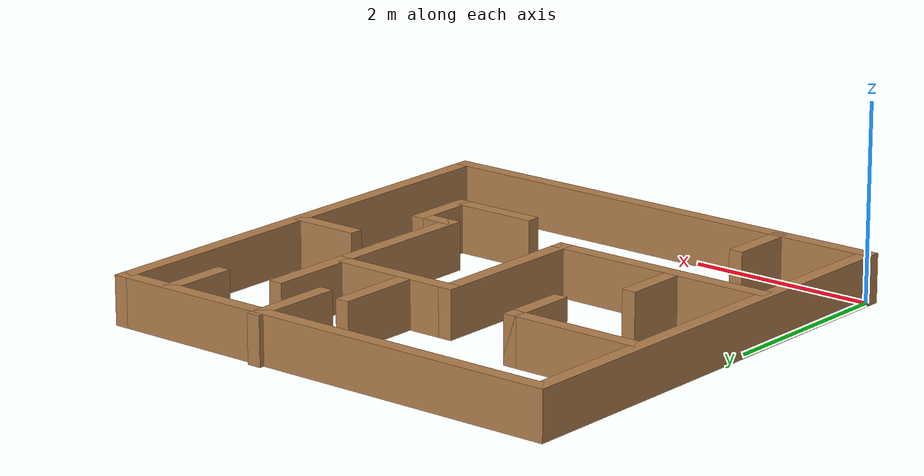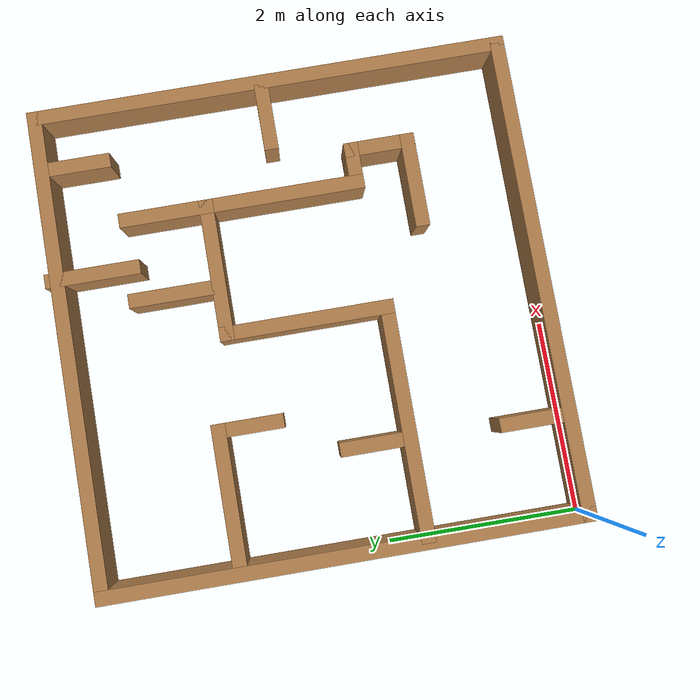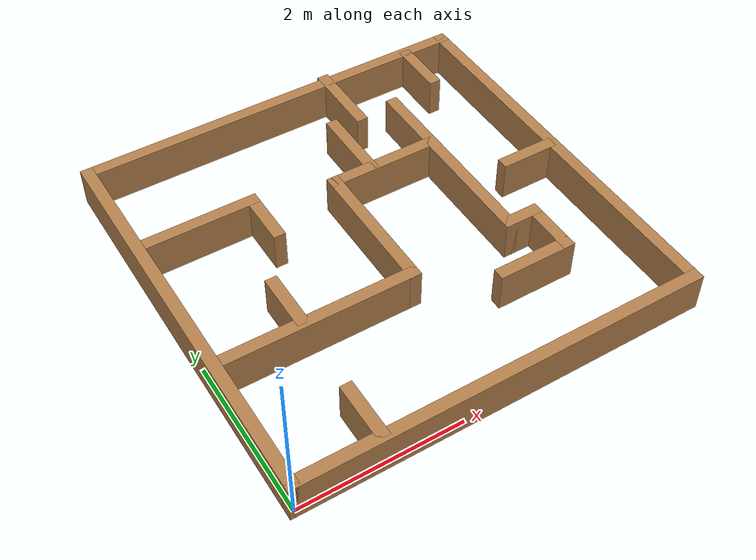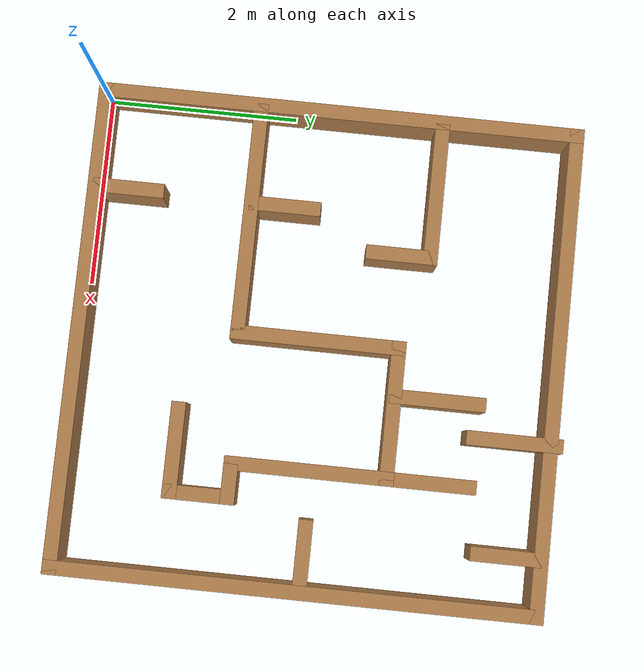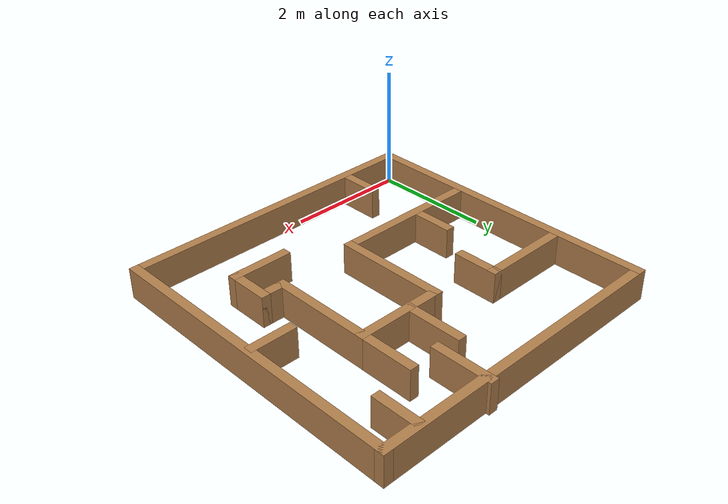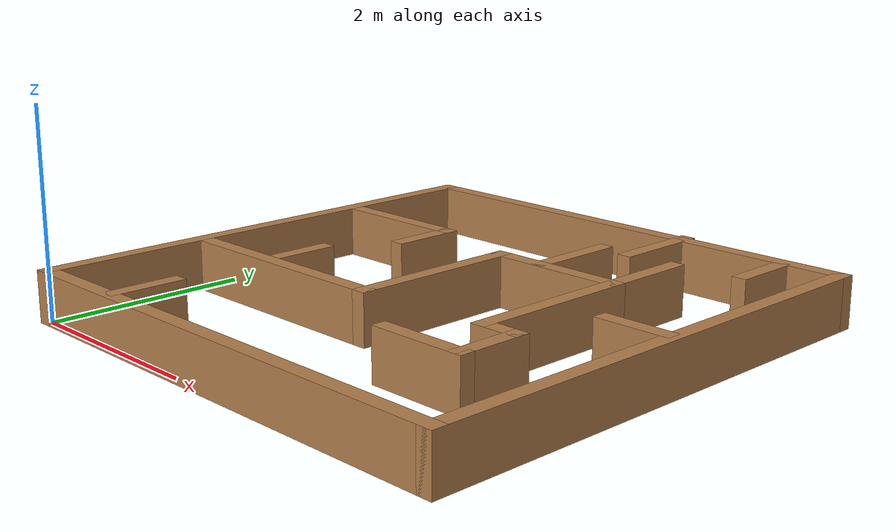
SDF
<?xml version='1.0'?>
<sdf version='1.7'>
  <model name='map_gp'>
    <pose>2.5 2.513 0 0 -0 0</pose>
    <link name='Wall_0'>
      <collision name='Wall_0_Collision'>
        <geometry>
          <box>
            <size>5.123 0.15 0.5</size>
          </box>
        </geometry>
        <pose>0 0 0.25 0 -0 0</pose>
      </collision>
      <visual name='Wall_0_Visual'>
        <pose>0 0 0.25 0 -0 0</pose>
        <geometry>
          <box>
            <size>5.123 0.15 0.5</size>
          </box>
        </geometry>
        <material>
          <script>
            <uri>file://media/materials/scripts/gazebo.material</uri>
            <name>Gazebo/Wood</name>
          </script>
          <ambient>1 1 1 1</ambient>
        </material>
        <meta>
          <layer>0</layer>
        </meta>
      </visual>
      <pose>-2.5 -0.0265 0 0 -0 1.5708</pose>
    </link>
    <link name='Wall_10'>
      <collision name='Wall_10_Collision'>
        <geometry>
          <box>
            <size>2.5 0.15 0.5</size>
          </box>
        </geometry>
        <pose>0 0 0.25 0 -0 0</pose>
      </collision>
      <visual name='Wall_10_Visual'>
        <pose>0 0 0.25 0 -0 0</pose>
        <geometry>
          <box>
            <size>2.5 0.15 0.5</size>
          </box>
        </geometry>
        <material>
          <script>
            <uri>file://media/materials/scripts/gazebo.material</uri>
            <name>Gazebo/Wood</name>
          </script>
          <ambient>1 1 1 1</ambient>
        </material>
        <meta>
          <layer>0</layer>
        </meta>
      </visual>
      <pose>-1.26 -0.865 0 0 -0 0</pose>
    </link>
    <link name='Wall_11'>
      <collision name='Wall_11_Collision'>
        <geometry>
          <box>
            <size>1.8298 0.15 0.5</size>
          </box>
        </geometry>
        <pose>0 0 0.25 0 -0 0</pose>
      </collision>
      <visual name='Wall_11_Visual'>
        <pose>0 0 0.25 0 -0 0</pose>
        <geometry>
          <box>
            <size>1.8298 0.15 0.5</size>
          </box>
        </geometry>
        <material>
          <script>
            <uri>file://media/materials/scripts/gazebo.material</uri>
            <name>Gazebo/Wood</name>
          </script>
          <ambient>1 1 1 1</ambient>
        </material>
        <meta>
          <layer>0</layer>
        </meta>
      </visual>
      <pose>-0.085 -0.0255 0 0 -0 1.5708</pose>
    </link>
    <link name='Wall_12'>
      <collision name='Wall_12_Collision'>
        <geometry>
          <box>
            <size>1.5 0.15 0.5</size>
          </box>
        </geometry>
        <pose>0 0 0.25 0 -0 0</pose>
      </collision>
      <visual name='Wall_12_Visual'>
        <pose>0 0 0.25 0 -0 0</pose>
        <geometry>
          <box>
            <size>1.5 0.15 0.5</size>
          </box>
        </geometry>
        <material>
          <script>
            <uri>file://media/materials/scripts/gazebo.material</uri>
            <name>Gazebo/Wood</name>
          </script>
          <ambient>1 1 1 1</ambient>
        </material>
        <meta>
          <layer>0</layer>
        </meta>
      </visual>
      <pose>0.59 0.814 0 0 -0 0</pose>
    </link>
    <link name='Wall_13'>
      <collision name='Wall_13_Collision'>
        <geometry>
          <box>
            <size>1.75 0.15 0.5</size>
          </box>
        </geometry>
        <pose>0 0 0.25 0 -0 0</pose>
      </collision>
      <visual name='Wall_13_Visual'>
        <pose>0 0 0.25 0 -0 0</pose>
        <geometry>
          <box>
            <size>1.75 0.15 0.5</size>
          </box>
        </geometry>
        <material>
          <script>
            <uri>file://media/materials/scripts/gazebo.material</uri>
            <name>Gazebo/Wood</name>
          </script>
          <ambient>1 1 1 1</ambient>
        </material>
        <meta>
          <layer>0</layer>
        </meta>
      </visual>
      <pose>1.265 0.014 0 0 -0 -1.5708</pose>
    </link>
    <link name='Wall_14'>
      <collision name='Wall_14_Collision'>
        <geometry>
          <box>
            <size>0.5 0.15 0.5</size>
          </box>
        </geometry>
        <pose>0 0 0.25 0 -0 0</pose>
      </collision>
      <visual name='Wall_14_Visual'>
        <pose>0 0 0.25 0 -0 0</pose>
        <geometry>
          <box>
            <size>0.5 0.15 0.5</size>
          </box>
        </geometry>
        <material>
          <script>
            <uri>file://media/materials/scripts/gazebo.material</uri>
            <name>Gazebo/Wood</name>
          </script>
          <ambient>1 1 1 1</ambient>
        </material>
        <meta>
          <layer>0</layer>
        </meta>
      </visual>
      <pose>1.44 -0.786 0 0 -0 0</pose>
    </link>
    <link name='Wall_15'>
      <collision name='Wall_15_Collision'>
        <geometry>
          <box>
            <size>0.75 0.15 0.5</size>
          </box>
        </geometry>
        <pose>0 0 0.25 0 -0 0</pose>
      </collision>
      <visual name='Wall_15_Visual'>
        <pose>0 0 0.25 0 -0 0</pose>
        <geometry>
          <box>
            <size>0.75 0.15 0.5</size>
          </box>
        </geometry>
        <material>
          <script>
            <uri>file://media/materials/scripts/gazebo.material</uri>
            <name>Gazebo/Wood</name>
          </script>
          <ambient>1 1 1 1</ambient>
        </material>
        <meta>
          <layer>0</layer>
        </meta>
      </visual>
      <pose>1.615 -1.086 0 0 -0 -1.5708</pose>
    </link>
    <link name='Wall_16'>
      <collision name='Wall_16_Collision'>
        <geometry>
          <box>
            <size>1 0.15 0.5</size>
          </box>
        </geometry>
        <pose>0 0 0.25 0 -0 0</pose>
      </collision>
      <visual name='Wall_16_Visual'>
        <pose>0 0 0.25 0 -0 0</pose>
        <geometry>
          <box>
            <size>1 0.15 0.5</size>
          </box>
        </geometry>
        <material>
          <script>
            <uri>file://media/materials/scripts/gazebo.material</uri>
            <name>Gazebo/Wood</name>
          </script>
          <ambient>1 1 1 1</ambient>
        </material>
        <meta>
          <layer>0</layer>
        </meta>
      </visual>
      <pose>1.19 -1.386 0 0 -0 3.14159</pose>
    </link>
    <link name='Wall_19'>
      <collision name='Wall_19_Collision'>
        <geometry>
          <box>
            <size>1 0.15 0.5</size>
          </box>
        </geometry>
        <pose>0 0 0.25 0 -0 0</pose>
      </collision>
      <visual name='Wall_19_Visual'>
        <pose>0 0 0.25 0 -0 0</pose>
        <geometry>
          <box>
            <size>1 0.15 0.5</size>
          </box>
        </geometry>
        <material>
          <script>
            <uri>file://media/materials/scripts/gazebo.material</uri>
            <name>Gazebo/Wood</name>
          </script>
          <ambient>1 1 1 1</ambient>
        </material>
        <meta>
          <layer>0</layer>
        </meta>
      </visual>
      <pose>0.412 1.262 0 0 -0 1.5708</pose>
    </link>
    <link name='Wall_2'>
      <collision name='Wall_2_Collision'>
        <geometry>
          <box>
            <size>5.15 0.15 0.5</size>
          </box>
        </geometry>
        <pose>0 0 0.25 0 -0 0</pose>
      </collision>
      <visual name='Wall_2_Visual'>
        <pose>0 0 0.25 0 -0 0</pose>
        <geometry>
          <box>
            <size>5.15 0.15 0.5</size>
          </box>
        </geometry>
        <material>
          <script>
            <uri>file://media/materials/scripts/gazebo.material</uri>
            <name>Gazebo/Wood</name>
          </script>
          <ambient>1 1 1 1</ambient>
        </material>
        <meta>
          <layer>0</layer>
        </meta>
      </visual>
      <pose>0 -2.513 0 0 -0 0</pose>
    </link>
    <link name='Wall_21'>
      <collision name='Wall_21_Collision'>
        <geometry>
          <box>
            <size>1 0.15 0.5</size>
          </box>
        </geometry>
        <pose>0 0 0.25 0 -0 0</pose>
      </collision>
      <visual name='Wall_21_Visual'>
        <pose>0 0 0.25 0 -0 0</pose>
        <geometry>
          <box>
            <size>1 0.15 0.5</size>
          </box>
        </geometry>
        <material>
          <script>
            <uri>file://media/materials/scripts/gazebo.material</uri>
            <name>Gazebo/Wood</name>
          </script>
          <ambient>1 1 1 1</ambient>
        </material>
        <meta>
          <layer>0</layer>
        </meta>
      </visual>
      <pose>1.265 1.239 0 0 -0 1.5708</pose>
    </link>
    <link name='Wall_23'>
      <collision name='Wall_23_Collision'>
        <geometry>
          <box>
            <size>1 0.15 0.5</size>
          </box>
        </geometry>
        <pose>0 0 0.25 0 -0 0</pose>
      </collision>
      <visual name='Wall_23_Visual'>
        <pose>0 0 0.25 0 -0 0</pose>
        <geometry>
          <box>
            <size>1 0.15 0.5</size>
          </box>
        </geometry>
        <material>
          <script>
            <uri>file://media/materials/scripts/gazebo.material</uri>
            <name>Gazebo/Wood</name>
          </script>
          <ambient>1 1 1 1</ambient>
        </material>
        <meta>
          <layer>0</layer>
        </meta>
      </visual>
      <pose>0.757 2.088 0 0 -0 -1.5708</pose>
    </link>
    <link name='Wall_25'>
      <collision name='Wall_25_Collision'>
        <geometry>
          <box>
            <size>0.75 0.15 0.5</size>
          </box>
        </geometry>
        <pose>0 0 0.25 0 -0 0</pose>
      </collision>
      <visual name='Wall_25_Visual'>
        <pose>0 0 0.25 0 -0 0</pose>
        <geometry>
          <box>
            <size>0.75 0.15 0.5</size>
          </box>
        </geometry>
        <material>
          <script>
            <uri>file://media/materials/scripts/gazebo.material</uri>
            <name>Gazebo/Wood</name>
          </script>
          <ambient>1 1 1 1</ambient>
        </material>
        <meta>
          <layer>0</layer>
        </meta>
      </visual>
      <pose>-1.477 -2.161 0 0 -0 1.5708</pose>
    </link>
    <link name='Wall_27'>
      <collision name='Wall_27_Collision'>
        <geometry>
          <box>
            <size>1.5 0.15 0.5</size>
          </box>
        </geometry>
        <pose>0 0 0.25 0 -0 0</pose>
      </collision>
      <visual name='Wall_27_Visual'>
        <pose>0 0 0.25 0 -0 0</pose>
        <geometry>
          <box>
            <size>1.5 0.15 0.5</size>
          </box>
        </geometry>
        <material>
          <script>
            <uri>file://media/materials/scripts/gazebo.material</uri>
            <name>Gazebo/Wood</name>
          </script>
          <ambient>1 1 1 1</ambient>
        </material>
        <meta>
          <layer>0</layer>
        </meta>
      </visual>
      <pose>-1.733 1.05 0 0 -0 0</pose>
    </link>
    <link name='Wall_28'>
      <collision name='Wall_28_Collision'>
        <geometry>
          <box>
            <size>0.75 0.15 0.5</size>
          </box>
        </geometry>
        <pose>0 0 0.25 0 -0 0</pose>
      </collision>
      <visual name='Wall_28_Visual'>
        <pose>0 0 0.25 0 -0 0</pose>
        <geometry>
          <box>
            <size>0.75 0.15 0.5</size>
          </box>
        </geometry>
        <material>
          <script>
            <uri>file://media/materials/scripts/gazebo.material</uri>
            <name>Gazebo/Wood</name>
          </script>
          <ambient>1 1 1 1</ambient>
        </material>
        <meta>
          <layer>0</layer>
        </meta>
      </visual>
      <pose>-1.058 0.75 0 0 -0 -1.5708</pose>
    </link>
    <link name='Wall_30'>
      <collision name='Wall_30_Collision'>
        <geometry>
          <box>
            <size>0.75 0.15 0.5</size>
          </box>
        </geometry>
        <pose>0 0 0.25 0 -0 0</pose>
      </collision>
      <visual name='Wall_30_Visual'>
        <pose>0 0 0.25 0 -0 0</pose>
        <geometry>
          <box>
            <size>0.75 0.15 0.5</size>
          </box>
        </geometry>
        <material>
          <script>
            <uri>file://media/materials/scripts/gazebo.material</uri>
            <name>Gazebo/Wood</name>
          </script>
          <ambient>1 1 1 1</ambient>
        </material>
        <meta>
          <layer>0</layer>
        </meta>
      </visual>
      <pose>-1.45 -0.512 0 0 -0 1.5708</pose>
    </link>
    <link name='Wall_32'>
      <collision name='Wall_32_Collision'>
        <geometry>
          <box>
            <size>0.75 0.15 0.5</size>
          </box>
        </geometry>
        <pose>0 0 0.25 0 -0 0</pose>
      </collision>
      <visual name='Wall_32_Visual'>
        <pose>0 0 0.25 0 -0 0</pose>
        <geometry>
          <box>
            <size>0.75 0.15 0.5</size>
          </box>
        </geometry>
        <material>
          <script>
            <uri>file://media/materials/scripts/gazebo.material</uri>
            <name>Gazebo/Wood</name>
          </script>
          <ambient>1 1 1 1</ambient>
        </material>
        <meta>
          <layer>0</layer>
        </meta>
      </visual>
      <pose>2.133 0.039 0 0 -0 3.14159</pose>
    </link>
    <link name='Wall_34'>
      <collision name='Wall_34_Collision'>
        <geometry>
          <box>
            <size>0.75 0.15 0.5</size>
          </box>
        </geometry>
        <pose>0 0 0.25 0 -0 0</pose>
      </collision>
      <visual name='Wall_34_Visual'>
        <pose>0 0 0.25 0 -0 0</pose>
        <geometry>
          <box>
            <size>0.75 0.15 0.5</size>
          </box>
        </geometry>
        <material>
          <script>
            <uri>file://media/materials/scripts/gazebo.material</uri>
            <name>Gazebo/Wood</name>
          </script>
          <ambient>1 1 1 1</ambient>
        </material>
        <meta>
          <layer>0</layer>
        </meta>
      </visual>
      <pose>1.928 2.106 0 0 -0 -1.5708</pose>
    </link>
    <link name='Wall_7'>
      <collision name='Wall_7_Collision'>
        <geometry>
          <box>
            <size>5.123 0.15 0.5</size>
          </box>
        </geometry>
        <pose>0 0 0.25 0 -0 0</pose>
      </collision>
      <visual name='Wall_7_Visual'>
        <pose>0 0 0.25 0 -0 0</pose>
        <geometry>
          <box>
            <size>5.123 0.15 0.5</size>
          </box>
        </geometry>
        <material>
          <script>
            <uri>file://media/materials/scripts/gazebo.material</uri>
            <name>Gazebo/Wood</name>
          </script>
          <ambient>1 1 1 1</ambient>
        </material>
        <meta>
          <layer>0</layer>
        </meta>
      </visual>
      <pose>2.5 -0.0265 0 0 -0 1.5708</pose>
    </link>
    <link name='Wall_8'>
      <collision name='Wall_8_Collision'>
        <geometry>
          <box>
            <size>5.15 0.15 0.5</size>
          </box>
        </geometry>
        <pose>0 0 0.25 0 -0 0</pose>
      </collision>
      <visual name='Wall_8_Visual'>
        <pose>0 0 0.25 0 -0 0</pose>
        <geometry>
          <box>
            <size>5.15 0.15 0.5</size>
          </box>
        </geometry>
        <material>
          <script>
            <uri>file://media/materials/scripts/gazebo.material</uri>
            <name>Gazebo/Wood</name>
          </script>
          <ambient>1 1 1 1</ambient>
        </material>
        <meta>
          <layer>0</layer>
        </meta>
      </visual>
      <pose>0 2.46 0 0 -0 3.14159</pose>
    </link>
    <static>1</static>
  </model>
</sdf>
